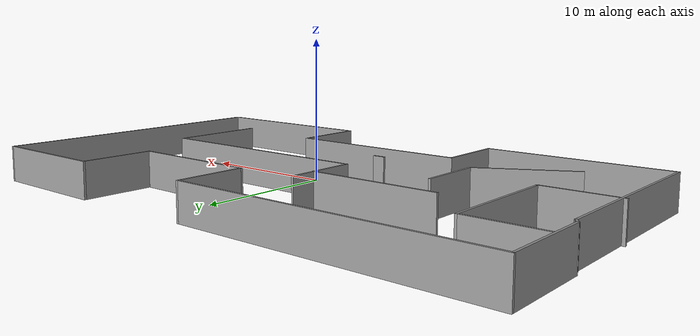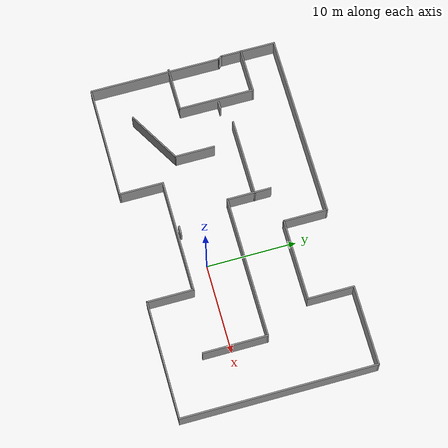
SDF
<?xml version='1.0'?>
<sdf version='1.6'>
  <model name='f1'>
    <pose frame=''>-3.32007 3.47916 0 0 -0 0</pose>
    <link name='Door_0'>
      <collision name='Door_0_Collision'>
        <geometry>
          <box>
            <size>0.9 0.17 2</size>
          </box>
        </geometry>
        <pose frame=''>0 0 1 0 -0 0</pose>
      </collision>
      <visual name='Door_0_Visual'>
        <pose frame=''>0 0 1 0 -0 0</pose>
        <geometry>
          <box>
            <size>0.9 0.17 2</size>
          </box>
        </geometry>
        <material>
          <script>
            <uri>file://media/materials/scripts/gazebo.material</uri>
            <name>Gazebo/Grey</name>
          </script>
        </material>
      </visual>
      <pose frame=''>-0.867054 -5.30355 0 0 -0 0</pose>
    </link>
    <link name='Door_2'>
      <collision name='Door_2_Collision'>
        <geometry>
          <box>
            <size>0.9 0.17 2</size>
          </box>
        </geometry>
        <pose frame=''>0 0 1 0 -0 0</pose>
      </collision>
      <visual name='Door_2_Visual'>
        <pose frame=''>0 0 1 0 -0 0</pose>
        <geometry>
          <box>
            <size>0.9 0.17 2</size>
          </box>
        </geometry>
        <material>
          <script>
            <uri>file://media/materials/scripts/gazebo.material</uri>
            <name>Gazebo/Grey</name>
          </script>
        </material>
      </visual>
      <pose frame=''>-13.815 2.71566 0 0 -0 0</pose>
    </link>
    <link name='Wall_1'>
      <collision name='Wall_1_Collision'>
        <geometry>
          <box>
            <size>14.75 0.15 2.5</size>
          </box>
        </geometry>
        <pose frame=''>0 0 1.25 0 -0 0</pose>
      </collision>
      <visual name='Wall_1_Visual'>
        <pose frame=''>0 0 1.25 0 -0 0</pose>
        <geometry>
          <box>
            <size>14.75 0.15 2.5</size>
          </box>
        </geometry>
        <material>
          <script>
            <uri>file://media/materials/scripts/gazebo.material</uri>
            <name>Gazebo/Grey</name>
          </script>
          <ambient>1 1 1 1</ambient>
        </material>
        <meta>
          <layer>0</layer>
        </meta>
      </visual>
      <pose frame=''>-19.0108 -3.25 0 0 0 -1.5708</pose>
    </link>
    <link name='Wall_10'>
      <collision name='Wall_10_Collision'>
        <geometry>
          <box>
            <size>9.25 0.15 2.5</size>
          </box>
        </geometry>
        <pose frame=''>0 0 1.25 0 -0 0</pose>
      </collision>
      <visual name='Wall_10_Visual'>
        <pose frame=''>0 0 1.25 0 -0 0</pose>
        <geometry>
          <box>
            <size>9.25 0.15 2.5</size>
          </box>
        </geometry>
        <material>
          <script>
            <uri>file://media/materials/scripts/gazebo.material</uri>
            <name>Gazebo/Grey</name>
          </script>
          <ambient>1 1 1 1</ambient>
        </material>
        <meta>
          <layer>0</layer>
        </meta>
      </visual>
      <pose frame=''>5.88917 5.7 0 0 -0 3.14159</pose>
    </link>
    <link name='Wall_11'>
      <collision name='Wall_11_Collision'>
        <geometry>
          <box>
            <size>5 0.15 2.5</size>
          </box>
        </geometry>
        <pose frame=''>0 0 1.25 0 -0 0</pose>
      </collision>
      <visual name='Wall_11_Visual'>
        <pose frame=''>0 0 1.25 0 -0 0</pose>
        <geometry>
          <box>
            <size>5 0.15 2.5</size>
          </box>
        </geometry>
        <material>
          <script>
            <uri>file://media/materials/scripts/gazebo.material</uri>
            <name>Gazebo/Grey</name>
          </script>
          <ambient>1 1 1 1</ambient>
        </material>
        <meta>
          <layer>0</layer>
        </meta>
      </visual>
      <pose frame=''>1.33917 8.125 0 0 -0 1.5708</pose>
    </link>
    <link name='Wall_12'>
      <collision name='Wall_12_Collision'>
        <geometry>
          <box>
            <size>20.75 0.15 2.5</size>
          </box>
        </geometry>
        <pose frame=''>0 0 1.25 0 -0 0</pose>
      </collision>
      <visual name='Wall_12_Visual'>
        <pose frame=''>0 0 1.25 0 -0 0</pose>
        <geometry>
          <box>
            <size>20.75 0.15 2.5</size>
          </box>
        </geometry>
        <material>
          <script>
            <uri>file://media/materials/scripts/gazebo.material</uri>
            <name>Gazebo/Grey</name>
          </script>
          <ambient>1 1 1 1</ambient>
        </material>
        <meta>
          <layer>0</layer>
        </meta>
      </visual>
      <pose frame=''>-8.96083 10.55 0 0 -0 3.14159</pose>
    </link>
    <link name='Wall_13'>
      <collision name='Wall_13_Collision'>
        <geometry>
          <box>
            <size>6.25 0.15 2.5</size>
          </box>
        </geometry>
        <pose frame=''>0 0 1.25 0 -0 0</pose>
      </collision>
      <visual name='Wall_13_Visual'>
        <pose frame=''>0 0 1.25 0 -0 0</pose>
        <geometry>
          <box>
            <size>6.25 0.15 2.5</size>
          </box>
        </geometry>
        <material>
          <script>
            <uri>file://media/materials/scripts/gazebo.material</uri>
            <name>Gazebo/Grey</name>
          </script>
          <ambient>1 1 1 1</ambient>
        </material>
        <meta>
          <layer>0</layer>
        </meta>
      </visual>
      <pose frame=''>-19.2608 7.5 0 0 0 -1.5708</pose>
    </link>
    <link name='Wall_17'>
      <collision name='Wall_17_Collision'>
        <geometry>
          <box>
            <size>0.621699 0.15 2.5</size>
          </box>
        </geometry>
        <pose frame=''>0 0 1.25 0 -0 0</pose>
      </collision>
      <visual name='Wall_17_Visual'>
        <pose frame=''>0 0 1.25 0 -0 0</pose>
        <geometry>
          <box>
            <size>0.621699 0.15 2.5</size>
          </box>
        </geometry>
        <material>
          <script>
            <uri>file://media/materials/scripts/gazebo.material</uri>
            <name>Gazebo/Grey</name>
          </script>
          <ambient>1 1 1 1</ambient>
        </material>
        <meta>
          <layer>0</layer>
        </meta>
      </visual>
      <pose frame=''>-19.1358 4.25 0 0 0 -1.0122</pose>
    </link>
    <link name='Wall_19'>
      <collision name='Wall_19_Collision'>
        <geometry>
          <box>
            <size>5 0.15 2.5</size>
          </box>
        </geometry>
        <pose frame=''>0 0 1.25 0 -0 0</pose>
      </collision>
      <visual name='Wall_19_Visual'>
        <pose frame=''>0 0 1.25 0 -0 0</pose>
        <geometry>
          <box>
            <size>5 0.15 2.5</size>
          </box>
        </geometry>
        <material>
          <script>
            <uri>file://media/materials/scripts/gazebo.material</uri>
            <name>Gazebo/Grey</name>
          </script>
          <ambient>1 1 1 1</ambient>
        </material>
        <meta>
          <layer>0</layer>
        </meta>
      </visual>
      <pose frame=''>-16.7963 -1.63771 0 0 -0 0</pose>
    </link>
    <link name='Wall_2'>
      <collision name='Wall_2_Collision'>
        <geometry>
          <box>
            <size>12.75 0.15 2.5</size>
          </box>
        </geometry>
        <pose frame=''>0 0 1.25 0 -0 0</pose>
      </collision>
      <visual name='Wall_2_Visual'>
        <pose frame=''>0 0 1.25 0 -0 0</pose>
        <geometry>
          <box>
            <size>12.75 0.15 2.5</size>
          </box>
        </geometry>
        <material>
          <script>
            <uri>file://media/materials/scripts/gazebo.material</uri>
            <name>Gazebo/Grey</name>
          </script>
          <ambient>1 1 1 1</ambient>
        </material>
        <meta>
          <layer>0</layer>
        </meta>
      </visual>
      <pose frame=''>-12.7108 -10.55 0 0 -0 0</pose>
    </link>
    <link name='Wall_20'>
      <collision name='Wall_20_Collision'>
        <geometry>
          <box>
            <size>8.5 0.15 2.5</size>
          </box>
        </geometry>
        <pose frame=''>0 0 1.25 0 -0 0</pose>
      </collision>
      <visual name='Wall_20_Visual'>
        <pose frame=''>0 0 1.25 0 -0 0</pose>
        <geometry>
          <box>
            <size>8.5 0.15 2.5</size>
          </box>
        </geometry>
        <material>
          <script>
            <uri>file://media/materials/scripts/gazebo.material</uri>
            <name>Gazebo/Grey</name>
          </script>
          <ambient>1 1 1 1</ambient>
        </material>
        <meta>
          <layer>0</layer>
        </meta>
      </visual>
      <pose frame=''>-14.3713 2.53729 0 0 -0 1.5708</pose>
    </link>
    <link name='Wall_21'>
      <collision name='Wall_21_Collision'>
        <geometry>
          <box>
            <size>5 0.15 2.5</size>
          </box>
        </geometry>
        <pose frame=''>0 0 1.25 0 -0 0</pose>
      </collision>
      <visual name='Wall_21_Visual'>
        <pose frame=''>0 0 1.25 0 -0 0</pose>
        <geometry>
          <box>
            <size>5 0.15 2.5</size>
          </box>
        </geometry>
        <material>
          <script>
            <uri>file://media/materials/scripts/gazebo.material</uri>
            <name>Gazebo/Grey</name>
          </script>
          <ambient>1 1 1 1</ambient>
        </material>
        <meta>
          <layer>0</layer>
        </meta>
      </visual>
      <pose frame=''>-16.7963 6.71229 0 0 -0 3.14159</pose>
    </link>
    <link name='Wall_23'>
      <collision name='Wall_23_Collision'>
        <geometry>
          <box>
            <size>4.5 0.15 2.5</size>
          </box>
        </geometry>
        <pose frame=''>0 0 1.25 0 -0 0</pose>
      </collision>
      <visual name='Wall_23_Visual'>
        <pose frame=''>0 0 1.25 0 -0 0</pose>
        <geometry>
          <box>
            <size>4.5 0.15 2.5</size>
          </box>
        </geometry>
        <material>
          <script>
            <uri>file://media/materials/scripts/gazebo.material</uri>
            <name>Gazebo/Grey</name>
          </script>
          <ambient>1 1 1 1</ambient>
        </material>
        <meta>
          <layer>0</layer>
        </meta>
      </visual>
      <pose frame=''>-9.01647 -1.42609 0 0 0 -1.5708</pose>
    </link>
    <link name='Wall_24'>
      <collision name='Wall_24_Collision'>
        <geometry>
          <box>
            <size>6.75 0.15 2.5</size>
          </box>
        </geometry>
        <pose frame=''>0 0 1.25 0 -0 0</pose>
      </collision>
      <visual name='Wall_24_Visual'>
        <pose frame=''>0 0 1.25 0 -0 0</pose>
        <geometry>
          <box>
            <size>6.75 0.15 2.5</size>
          </box>
        </geometry>
        <material>
          <script>
            <uri>file://media/materials/scripts/gazebo.material</uri>
            <name>Gazebo/Grey</name>
          </script>
          <ambient>1 1 1 1</ambient>
        </material>
        <meta>
          <layer>0</layer>
        </meta>
      </visual>
      <pose frame=''>-11.8744 -5.25109 0 0 0 -2.61799</pose>
    </link>
    <link name='Wall_26'>
      <collision name='Wall_26_Collision'>
        <geometry>
          <box>
            <size>5 0.15 2.5</size>
          </box>
        </geometry>
        <pose frame=''>0 0 1.25 0 -0 0</pose>
      </collision>
      <visual name='Wall_26_Visual'>
        <pose frame=''>0 0 1.25 0 -0 0</pose>
        <geometry>
          <box>
            <size>5 0.15 2.5</size>
          </box>
        </geometry>
        <material>
          <script>
            <uri>file://media/materials/scripts/gazebo.material</uri>
            <name>Gazebo/Grey</name>
          </script>
          <ambient>1 1 1 1</ambient>
        </material>
        <meta>
          <layer>0</layer>
        </meta>
      </visual>
      <pose frame=''>-2.67957 2.93256 0 0 0 -1.5708</pose>
    </link>
    <link name='Wall_27'>
      <collision name='Wall_27_Collision'>
        <geometry>
          <box>
            <size>16 0.15 2.5</size>
          </box>
        </geometry>
        <pose frame=''>0 0 1.25 0 -0 0</pose>
      </collision>
      <visual name='Wall_27_Visual'>
        <pose frame=''>0 0 1.25 0 -0 0</pose>
        <geometry>
          <box>
            <size>16 0.15 2.5</size>
          </box>
        </geometry>
        <material>
          <script>
            <uri>file://media/materials/scripts/gazebo.material</uri>
            <name>Gazebo/Grey</name>
          </script>
          <ambient>1 1 1 1</ambient>
        </material>
        <meta>
          <layer>0</layer>
        </meta>
      </visual>
      <pose frame=''>5.24543 0.507564 0 0 -0 0</pose>
    </link>
    <link name='Wall_28'>
      <collision name='Wall_28_Collision'>
        <geometry>
          <box>
            <size>7.25 0.15 2.5</size>
          </box>
        </geometry>
        <pose frame=''>0 0 1.25 0 -0 0</pose>
      </collision>
      <visual name='Wall_28_Visual'>
        <pose frame=''>0 0 1.25 0 -0 0</pose>
        <geometry>
          <box>
            <size>7.25 0.15 2.5</size>
          </box>
        </geometry>
        <material>
          <script>
            <uri>file://media/materials/scripts/gazebo.material</uri>
            <name>Gazebo/Grey</name>
          </script>
          <ambient>1 1 1 1</ambient>
        </material>
        <meta>
          <layer>0</layer>
        </meta>
      </visual>
      <pose frame=''>13.1704 -3.04244 0 0 0 -1.5708</pose>
    </link>
    <link name='Wall_3'>
      <collision name='Wall_3_Collision'>
        <geometry>
          <box>
            <size>5 0.15 2.5</size>
          </box>
        </geometry>
        <pose frame=''>0 0 1.25 0 -0 0</pose>
      </collision>
      <visual name='Wall_3_Visual'>
        <pose frame=''>0 0 1.25 0 -0 0</pose>
        <geometry>
          <box>
            <size>5 0.15 2.5</size>
          </box>
        </geometry>
        <material>
          <script>
            <uri>file://media/materials/scripts/gazebo.material</uri>
            <name>Gazebo/Grey</name>
          </script>
          <ambient>1 1 1 1</ambient>
        </material>
        <meta>
          <layer>0</layer>
        </meta>
      </visual>
      <pose frame=''>-6.41083 -8.125 0 0 -0 1.5708</pose>
    </link>
    <link name='Wall_30'>
      <collision name='Wall_30_Collision'>
        <geometry>
          <box>
            <size>8.75 0.15 2.5</size>
          </box>
        </geometry>
        <pose frame=''>0 0 1.25 0 -0 0</pose>
      </collision>
      <visual name='Wall_30_Visual'>
        <pose frame=''>0 0 1.25 0 -0 0</pose>
        <geometry>
          <box>
            <size>8.75 0.15 2.5</size>
          </box>
        </geometry>
        <material>
          <script>
            <uri>file://media/materials/scripts/gazebo.material</uri>
            <name>Gazebo/Grey</name>
          </script>
          <ambient>1 1 1 1</ambient>
        </material>
        <meta>
          <layer>0</layer>
        </meta>
      </visual>
      <pose frame=''>-6.94727 3.56744 0 0 -0 3.14159</pose>
    </link>
    <link name='Wall_4'>
      <collision name='Wall_4_Collision'>
        <geometry>
          <box>
            <size>12.75 0.15 2.5</size>
          </box>
        </geometry>
        <pose frame=''>0 0 1.25 0 -0 0</pose>
      </collision>
      <visual name='Wall_4_Visual'>
        <pose frame=''>0 0 1.25 0 -0 0</pose>
        <geometry>
          <box>
            <size>12.75 0.15 2.5</size>
          </box>
        </geometry>
        <material>
          <script>
            <uri>file://media/materials/scripts/gazebo.material</uri>
            <name>Gazebo/Grey</name>
          </script>
          <ambient>1 1 1 1</ambient>
        </material>
        <meta>
          <layer>0</layer>
        </meta>
      </visual>
      <pose frame=''>-0.110826 -5.7 0 0 -0 0</pose>
    </link>
    <link name='Wall_5'>
      <collision name='Wall_5_Collision'>
        <geometry>
          <box>
            <size>5.25 0.15 2.5</size>
          </box>
        </geometry>
        <pose frame=''>0 0 1.25 0 -0 0</pose>
      </collision>
      <visual name='Wall_5_Visual'>
        <pose frame=''>0 0 1.25 0 -0 0</pose>
        <geometry>
          <box>
            <size>5.25 0.15 2.5</size>
          </box>
        </geometry>
        <material>
          <script>
            <uri>file://media/materials/scripts/gazebo.material</uri>
            <name>Gazebo/Grey</name>
          </script>
          <ambient>1 1 1 1</ambient>
        </material>
        <meta>
          <layer>0</layer>
        </meta>
      </visual>
      <pose frame=''>6.18917 -8.25 0 0 0 -1.5708</pose>
    </link>
    <link name='Wall_6'>
      <collision name='Wall_6_Collision'>
        <geometry>
          <box>
            <size>13.25 0.15 2.5</size>
          </box>
        </geometry>
        <pose frame=''>0 0 1.25 0 -0 0</pose>
      </collision>
      <visual name='Wall_6_Visual'>
        <pose frame=''>0 0 1.25 0 -0 0</pose>
        <geometry>
          <box>
            <size>13.25 0.15 2.5</size>
          </box>
        </geometry>
        <material>
          <script>
            <uri>file://media/materials/scripts/gazebo.material</uri>
            <name>Gazebo/Grey</name>
          </script>
          <ambient>1 1 1 1</ambient>
        </material>
        <meta>
          <layer>0</layer>
        </meta>
      </visual>
      <pose frame=''>12.7392 -10.8 0 0 -0 0</pose>
    </link>
    <link name='Wall_7'>
      <collision name='Wall_7_Collision'>
        <geometry>
          <box>
            <size>21.75 0.15 2.5</size>
          </box>
        </geometry>
        <pose frame=''>0 0 1.25 0 -0 0</pose>
      </collision>
      <visual name='Wall_7_Visual'>
        <pose frame=''>0 0 1.25 0 -0 0</pose>
        <geometry>
          <box>
            <size>21.75 0.15 2.5</size>
          </box>
        </geometry>
        <material>
          <script>
            <uri>file://media/materials/scripts/gazebo.material</uri>
            <name>Gazebo/Grey</name>
          </script>
          <ambient>1 1 1 1</ambient>
        </material>
        <meta>
          <layer>0</layer>
        </meta>
      </visual>
      <pose frame=''>19.2892 0 0 0 -0 1.5708</pose>
    </link>
    <link name='Wall_8'>
      <collision name='Wall_8_Collision'>
        <geometry>
          <box>
            <size>9 0.15 2.5</size>
          </box>
        </geometry>
        <pose frame=''>0 0 1.25 0 -0 0</pose>
      </collision>
      <visual name='Wall_8_Visual'>
        <pose frame=''>0 0 1.25 0 -0 0</pose>
        <geometry>
          <box>
            <size>9 0.15 2.5</size>
          </box>
        </geometry>
        <material>
          <script>
            <uri>file://media/materials/scripts/gazebo.material</uri>
            <name>Gazebo/Grey</name>
          </script>
          <ambient>1 1 1 1</ambient>
        </material>
        <meta>
          <layer>0</layer>
        </meta>
      </visual>
      <pose frame=''>14.8642 10.8 0 0 -0 3.14159</pose>
    </link>
    <link name='Wall_9'>
      <collision name='Wall_9_Collision'>
        <geometry>
          <box>
            <size>5.25 0.15 2.5</size>
          </box>
        </geometry>
        <pose frame=''>0 0 1.25 0 -0 0</pose>
      </collision>
      <visual name='Wall_9_Visual'>
        <pose frame=''>0 0 1.25 0 -0 0</pose>
        <geometry>
          <box>
            <size>5.25 0.15 2.5</size>
          </box>
        </geometry>
        <material>
          <script>
            <uri>file://media/materials/scripts/gazebo.material</uri>
            <name>Gazebo/Grey</name>
          </script>
          <ambient>1 1 1 1</ambient>
        </material>
        <meta>
          <layer>0</layer>
        </meta>
      </visual>
      <pose frame=''>10.4392 8.25 0 0 0 -1.5708</pose>
    </link>
    <static>1</static>
  </model>
</sdf>
